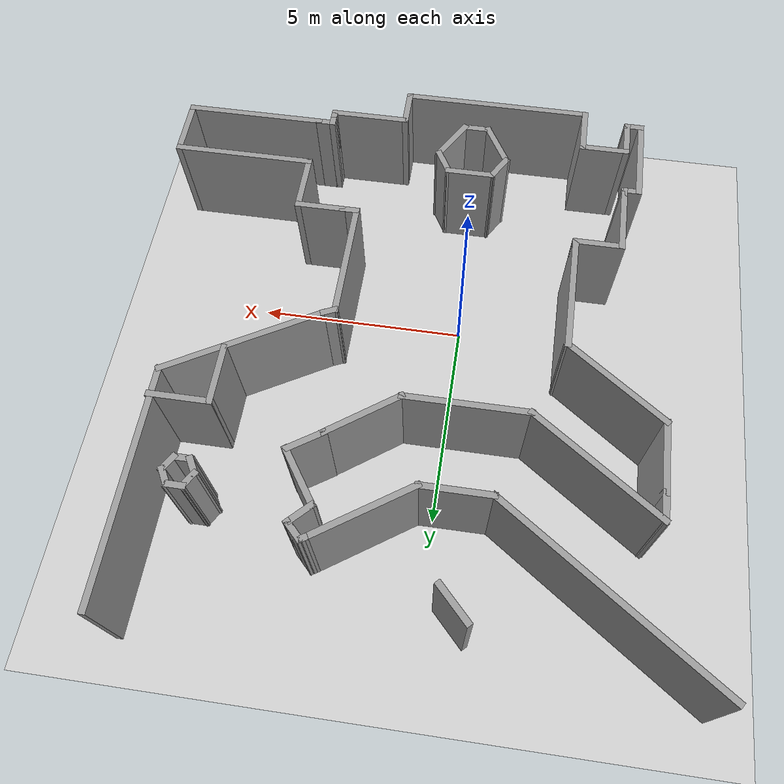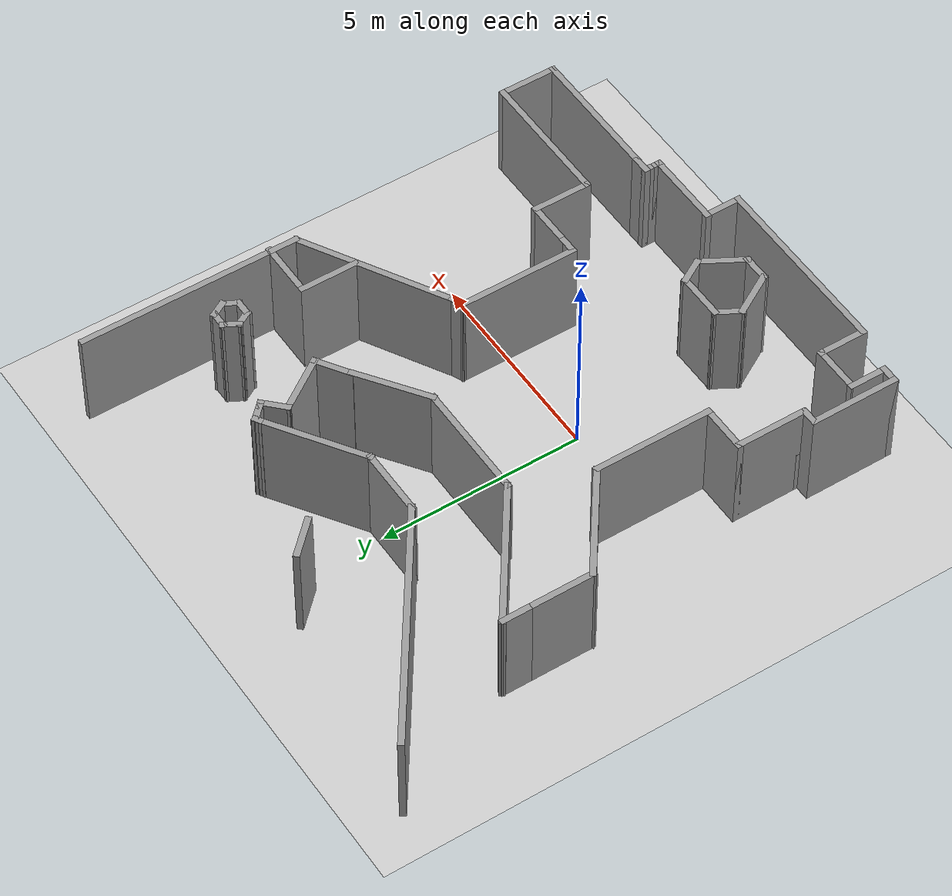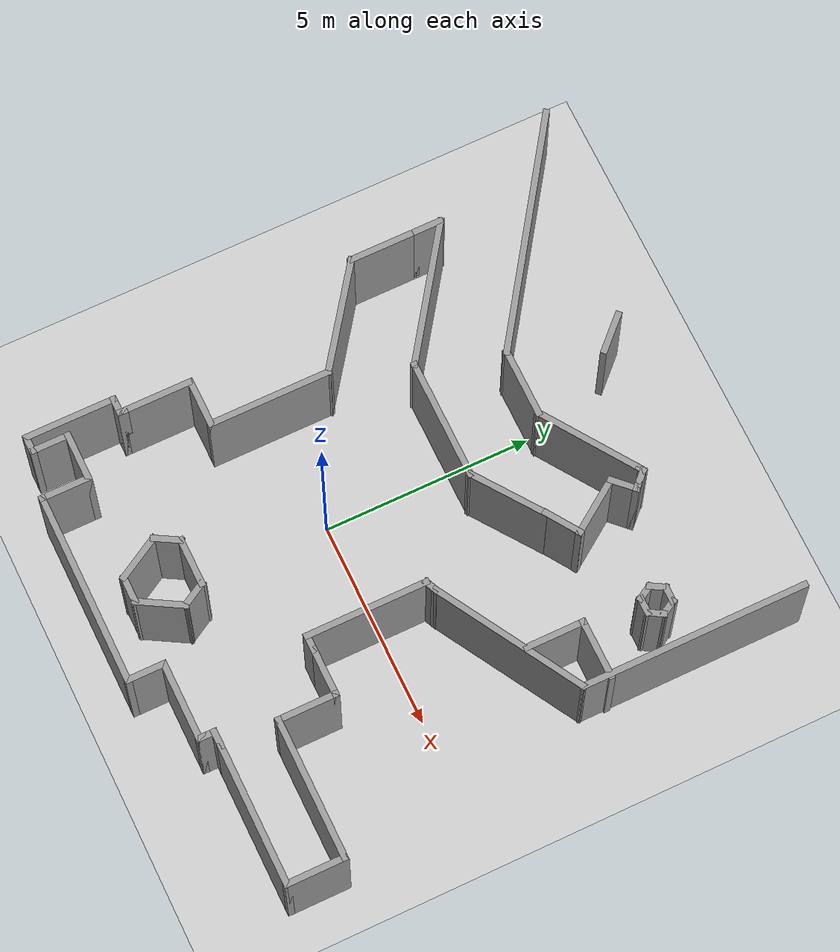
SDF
<sdf version="1.7">
 <world name="default">
  <model name="ground_plane">
   <static>1</static>
   <link name="link">
    <collision name="collision">
     <geometry><plane><normal>0 0 1</normal><size>100 100</size></plane></geometry>
     <surface>
      <contact><collide_bitmask>65535</collide_bitmask></contact>
      <friction><ode><mu>100</mu><mu2>50</mu2></ode></friction>
     </surface>
    </collision>
    <visual name="visual">
     <cast_shadows>0</cast_shadows>
     <geometry><plane><normal>0 0 1</normal><size>100 100</size></plane></geometry>
     <material>
      <script><uri>file://media/materials/scripts/gazebo.material</uri><name>Gazebo/Grey</name></script>
     </material>
    </visual>
   </link>
  </model>
  <model name="all_changdi">
   <pose>0.143338 8.39111 0 0 0 -1.57051</pose>
   <link name="Wall_100">
    <collision name="Wall_100_Collision">
     <geometry><box><size>1.75 0.15 2.5</size></box></geometry>
     <pose>0 0 1.25 0 -0 0</pose>
    </collision>
    <visual name="Wall_100_Visual">
     <pose>0 0 1.25 0 -0 0</pose>
     <geometry><box><size>1.75 0.15 2.5</size></box></geometry>
     <material>
      <script><uri>file://media/materials/scripts/gazebo.material</uri><name>Gazebo/Grey</name></script>
      <ambient>1 1 1 1</ambient>
     </material>
     <meta><layer>0</layer></meta>
    </visual>
    <pose>4.70961 -4.90602 0 0 -0 0</pose>
   </link>
   <link name="Wall_101">
    <collision name="Wall_101_Collision">
     <geometry><box><size>2.89585 0.15 2.5</size></box></geometry>
     <pose>0 0 1.25 0 -0 0</pose>
    </collision>
    <visual name="Wall_101_Visual">
     <pose>0 0 1.25 0 -0 0</pose>
     <geometry><box><size>2.89585 0.15 2.5</size></box></geometry>
     <material>
      <script><uri>file://media/materials/scripts/gazebo.material</uri><name>Gazebo/Grey</name></script>
      <ambient>1 1 1 1</ambient>
     </material>
     <meta><layer>0</layer></meta>
    </visual>
    <pose>6.3143 -3.79364 0 0 -0 0.94454</pose>
   </link>
   <link name="Wall_104">
    <collision name="Wall_104_Collision">
     <geometry><box><size>3 0.15 2.5</size></box></geometry>
     <pose>0 0 1.25 0 -0 0</pose>
    </collision>
    <visual name="Wall_104_Visual">
     <pose>0 0 1.25 0 -0 0</pose>
     <geometry><box><size>3 0.15 2.5</size></box></geometry>
     <material>
      <script><uri>file://media/materials/scripts/gazebo.material</uri><name>Gazebo/Grey</name></script>
      <ambient>1 1 1 1</ambient>
     </material>
     <meta><layer>0</layer></meta>
    </visual>
    <pose>8.544 -2.68126 0 0 -0 0</pose>
   </link>
   <link name="Wall_105">
    <collision name="Wall_105_Collision">
     <geometry><box><size>1.25 0.15 2.5</size></box></geometry>
     <pose>0 0 1.25 0 -0 0</pose>
    </collision>
    <visual name="Wall_105_Visual">
     <pose>0 0 1.25 0 -0 0</pose>
     <geometry><box><size>1.25 0.15 2.5</size></box></geometry>
     <material>
      <script><uri>file://media/materials/scripts/gazebo.material</uri><name>Gazebo/Grey</name></script>
      <ambient>1 1 1 1</ambient>
     </material>
     <meta><layer>0</layer></meta>
    </visual>
    <pose>9.96899 -3.23126 0 0 -0 -1.5708</pose>
   </link>
   <link name="Wall_106">
    <collision name="Wall_106_Collision">
     <geometry><box><size>1.75 0.15 2.5</size></box></geometry>
     <pose>0 0 1.25 0 -0 0</pose>
    </collision>
    <visual name="Wall_106_Visual">
     <pose>0 0 1.25 0 -0 0</pose>
     <geometry><box><size>1.75 0.15 2.5</size></box></geometry>
     <material>
      <script><uri>file://media/materials/scripts/gazebo.material</uri><name>Gazebo/Grey</name></script>
      <ambient>1 1 1 1</ambient>
     </material>
     <meta><layer>0</layer></meta>
    </visual>
    <pose>10.769 -3.78126 0 0 -0 0</pose>
   </link>
   <link name="Wall_107">
    <collision name="Wall_107_Collision">
     <geometry><box><size>0.25 0.15 2.5</size></box></geometry>
     <pose>0 0 1.25 0 -0 0</pose>
    </collision>
    <visual name="Wall_107_Visual">
     <pose>0 0 1.25 0 -0 0</pose>
     <geometry><box><size>0.25 0.15 2.5</size></box></geometry>
     <material>
      <script><uri>file://media/materials/scripts/gazebo.material</uri><name>Gazebo/Grey</name></script>
      <ambient>1 1 1 1</ambient>
     </material>
     <meta><layer>0</layer></meta>
    </visual>
    <pose>11.619 -3.78126 0 0 -0 0</pose>
   </link>
   <link name="Wall_108">
    <collision name="Wall_108_Collision">
     <geometry><box><size>0.5 0.15 2.5</size></box></geometry>
     <pose>0 0 1.25 0 -0 0</pose>
    </collision>
    <visual name="Wall_108_Visual">
     <pose>0 0 1.25 0 -0 0</pose>
     <geometry><box><size>0.5 0.15 2.5</size></box></geometry>
     <material>
      <script><uri>file://media/materials/scripts/gazebo.material</uri><name>Gazebo/Grey</name></script>
      <ambient>1 1 1 1</ambient>
     </material>
     <meta><layer>0</layer></meta>
    </visual>
    <pose>11.669 -3.95626 0 0 -0 -1.5708</pose>
   </link>
   <link name="Wall_109">
    <collision name="Wall_109_Collision">
     <geometry><box><size>2.25 0.15 2.5</size></box></geometry>
     <pose>0 0 1.25 0 -0 0</pose>
    </collision>
    <visual name="Wall_109_Visual">
     <pose>0 0 1.25 0 -0 0</pose>
     <geometry><box><size>2.25 0.15 2.5</size></box></geometry>
     <material>
      <script><uri>file://media/materials/scripts/gazebo.material</uri><name>Gazebo/Grey</name></script>
      <ambient>1 1 1 1</ambient>
     </material>
     <meta><layer>0</layer></meta>
    </visual>
    <pose>12.719 -4.13126 0 0 -0 0</pose>
   </link>
   <link name="Wall_110">
    <collision name="Wall_110_Collision">
     <geometry><box><size>0.5 0.15 2.5</size></box></geometry>
     <pose>0 0 1.25 0 -0 0</pose>
    </collision>
    <visual name="Wall_110_Visual">
     <pose>0 0 1.25 0 -0 0</pose>
     <geometry><box><size>0.5 0.15 2.5</size></box></geometry>
     <material>
      <script><uri>file://media/materials/scripts/gazebo.material</uri><name>Gazebo/Grey</name></script>
      <ambient>1 1 1 1</ambient>
     </material>
     <meta><layer>0</layer></meta>
    </visual>
    <pose>13.769 -3.95626 0 0 -0 1.5708</pose>
   </link>
   <link name="Wall_111">
    <collision name="Wall_111_Collision">
     <geometry><box><size>1 0.15 2.5</size></box></geometry>
     <pose>0 0 1.25 0 -0 0</pose>
    </collision>
    <visual name="Wall_111_Visual">
     <pose>0 0 1.25 0 -0 0</pose>
     <geometry><box><size>1 0.15 2.5</size></box></geometry>
     <material>
      <script><uri>file://media/materials/scripts/gazebo.material</uri><name>Gazebo/Grey</name></script>
      <ambient>1 1 1 1</ambient>
     </material>
     <meta><layer>0</layer></meta>
    </visual>
    <pose>13.344 -3.78126 0 0 -0 3.14159</pose>
   </link>
   <link name="Wall_112">
    <collision name="Wall_112_Collision">
     <geometry><box><size>1.25 0.15 2.5</size></box></geometry>
     <pose>0 0 1.25 0 -0 0</pose>
    </collision>
    <visual name="Wall_112_Visual">
     <pose>0 0 1.25 0 -0 0</pose>
     <geometry><box><size>1.25 0.15 2.5</size></box></geometry>
     <material>
      <script><uri>file://media/materials/scripts/gazebo.material</uri><name>Gazebo/Grey</name></script>
      <ambient>1 1 1 1</ambient>
     </material>
     <meta><layer>0</layer></meta>
    </visual>
    <pose>12.919 -3.23126 0 0 -0 1.5708</pose>
   </link>
   <link name="Wall_113">
    <collision name="Wall_113_Collision">
     <geometry><box><size>1.25 0.15 2.5</size></box></geometry>
     <pose>0 0 1.25 0 -0 0</pose>
    </collision>
    <visual name="Wall_113_Visual">
     <pose>0 0 1.25 0 -0 0</pose>
     <geometry><box><size>1.25 0.15 2.5</size></box></geometry>
     <material>
      <script><uri>file://media/materials/scripts/gazebo.material</uri><name>Gazebo/Grey</name></script>
      <ambient>1 1 1 1</ambient>
     </material>
     <meta><layer>0</layer></meta>
    </visual>
    <pose>13.469 -2.68126 0 0 -0 0</pose>
   </link>
   <link name="Wall_115">
    <collision name="Wall_115_Collision">
     <geometry><box><size>4.75 0.15 2.5</size></box></geometry>
     <pose>0 0 1.25 0 -0 0</pose>
    </collision>
    <visual name="Wall_115_Visual">
     <pose>0 0 1.25 0 -0 0</pose>
     <geometry><box><size>4.75 0.15 2.5</size></box></geometry>
     <material>
      <script><uri>file://media/materials/scripts/gazebo.material</uri><name>Gazebo/Grey</name></script>
      <ambient>1 1 1 1</ambient>
     </material>
     <meta><layer>0</layer></meta>
    </visual>
    <pose>14.019 -0.381256 0 0 -0 1.5708</pose>
   </link>
   <link name="Wall_116">
    <collision name="Wall_116_Collision">
     <geometry><box><size>1 0.15 2.5</size></box></geometry>
     <pose>0 0 1.25 0 -0 0</pose>
    </collision>
    <visual name="Wall_116_Visual">
     <pose>0 0 1.25 0 -0 0</pose>
     <geometry><box><size>1 0.15 2.5</size></box></geometry>
     <material>
      <script><uri>file://media/materials/scripts/gazebo.material</uri><name>Gazebo/Grey</name></script>
      <ambient>1 1 1 1</ambient>
     </material>
     <meta><layer>0</layer></meta>
    </visual>
    <pose>13.594 1.91874 0 0 -0 3.14159</pose>
   </link>
   <link name="Wall_118">
    <collision name="Wall_118_Collision">
     <geometry><box><size>2 0.15 2.5</size></box></geometry>
     <pose>0 0 1.25 0 -0 0</pose>
    </collision>
    <visual name="Wall_118_Visual">
     <pose>0 0 1.25 0 -0 0</pose>
     <geometry><box><size>2 0.15 2.5</size></box></geometry>
     <material>
      <script><uri>file://media/materials/scripts/gazebo.material</uri><name>Gazebo/Grey</name></script>
      <ambient>1 1 1 1</ambient>
     </material>
     <meta><layer>0</layer></meta>
    </visual>
    <pose>13.169 2.84374 0 0 -0 1.5708</pose>
   </link>
   <link name="Wall_119">
    <collision name="Wall_119_Collision">
     <geometry><box><size>0.25 0.15 2.5</size></box></geometry>
     <pose>0 0 1.25 0 -0 0</pose>
    </collision>
    <visual name="Wall_119_Visual">
     <pose>0 0 1.25 0 -0 0</pose>
     <geometry><box><size>0.25 0.15 2.5</size></box></geometry>
     <material>
      <script><uri>file://media/materials/scripts/gazebo.material</uri><name>Gazebo/Grey</name></script>
      <ambient>1 1 1 1</ambient>
     </material>
     <meta><layer>0</layer></meta>
    </visual>
    <pose>13.119 3.76874 0 0 -0 3.14159</pose>
   </link>
   <link name="Wall_121">
    <collision name="Wall_121_Collision">
     <geometry><box><size>0.5 0.15 2.5</size></box></geometry>
     <pose>0 0 1.25 0 -0 0</pose>
    </collision>
    <visual name="Wall_121_Visual">
     <pose>0 0 1.25 0 -0 0</pose>
     <geometry><box><size>0.5 0.15 2.5</size></box></geometry>
     <material>
      <script><uri>file://media/materials/scripts/gazebo.material</uri><name>Gazebo/Grey</name></script>
      <ambient>1 1 1 1</ambient>
     </material>
     <meta><layer>0</layer></meta>
    </visual>
    <pose>12.994 3.76874 0 0 -0 3.14159</pose>
   </link>
   <link name="Wall_122">
    <collision name="Wall_122_Collision">
     <geometry><box><size>0.5 0.15 2.5</size></box></geometry>
     <pose>0 0 1.25 0 -0 0</pose>
    </collision>
    <visual name="Wall_122_Visual">
     <pose>0 0 1.25 0 -0 0</pose>
     <geometry><box><size>0.5 0.15 2.5</size></box></geometry>
     <material>
      <script><uri>file://media/materials/scripts/gazebo.material</uri><name>Gazebo/Grey</name></script>
      <ambient>1 1 1 1</ambient>
     </material>
     <meta><layer>0</layer></meta>
    </visual>
    <pose>12.819 3.94374 0 0 -0 1.5708</pose>
   </link>
   <link name="Wall_123">
    <collision name="Wall_123_Collision">
     <geometry><box><size>3.5 0.15 2.5</size></box></geometry>
     <pose>0 0 1.25 0 -0 0</pose>
    </collision>
    <visual name="Wall_123_Visual">
     <pose>0 0 1.25 0 -0 0</pose>
     <geometry><box><size>3.5 0.15 2.5</size></box></geometry>
     <material>
      <script><uri>file://media/materials/scripts/gazebo.material</uri><name>Gazebo/Grey</name></script>
      <ambient>1 1 1 1</ambient>
     </material>
     <meta><layer>0</layer></meta>
    </visual>
    <pose>12.819 5.79374 0 0 -0 1.5708</pose>
   </link>
   <link name="Wall_124">
    <collision name="Wall_124_Collision">
     <geometry><box><size>1.5 0.15 2.5</size></box></geometry>
     <pose>0 0 1.25 0 -0 0</pose>
    </collision>
    <visual name="Wall_124_Visual">
     <pose>0 0 1.25 0 -0 0</pose>
     <geometry><box><size>1.5 0.15 2.5</size></box></geometry>
     <material>
      <script><uri>file://media/materials/scripts/gazebo.material</uri><name>Gazebo/Grey</name></script>
      <ambient>1 1 1 1</ambient>
     </material>
     <meta><layer>0</layer></meta>
    </visual>
    <pose>12.144 7.46874 0 0 -0 3.14159</pose>
   </link>
   <link name="Wall_125">
    <collision name="Wall_125_Collision">
     <geometry><box><size>3.5 0.15 2.5</size></box></geometry>
     <pose>0 0 1.25 0 -0 0</pose>
    </collision>
    <visual name="Wall_125_Visual">
     <pose>0 0 1.25 0 -0 0</pose>
     <geometry><box><size>3.5 0.15 2.5</size></box></geometry>
     <material>
      <script><uri>file://media/materials/scripts/gazebo.material</uri><name>Gazebo/Grey</name></script>
      <ambient>1 1 1 1</ambient>
     </material>
     <meta><layer>0</layer></meta>
    </visual>
    <pose>11.469 5.79374 0 0 -0 -1.5708</pose>
   </link>
   <link name="Wall_126">
    <collision name="Wall_126_Collision">
     <geometry><box><size>1.5 0.15 2.5</size></box></geometry>
     <pose>0 0 1.25 0 -0 0</pose>
    </collision>
    <visual name="Wall_126_Visual">
     <pose>0 0 1.25 0 -0 0</pose>
     <geometry><box><size>1.5 0.15 2.5</size></box></geometry>
     <material>
      <script><uri>file://media/materials/scripts/gazebo.material</uri><name>Gazebo/Grey</name></script>
      <ambient>1 1 1 1</ambient>
     </material>
     <meta><layer>0</layer></meta>
    </visual>
    <pose>10.794 4.11874 0 0 -0 3.14159</pose>
   </link>
   <link name="Wall_127">
    <collision name="Wall_127_Collision">
     <geometry><box><size>1.25 0.15 2.5</size></box></geometry>
     <pose>0 0 1.25 0 -0 0</pose>
    </collision>
    <visual name="Wall_127_Visual">
     <pose>0 0 1.25 0 -0 0</pose>
     <geometry><box><size>1.25 0.15 2.5</size></box></geometry>
     <material>
      <script><uri>file://media/materials/scripts/gazebo.material</uri><name>Gazebo/Grey</name></script>
      <ambient>1 1 1 1</ambient>
     </material>
     <meta><layer>0</layer></meta>
    </visual>
    <pose>10.119 3.56874 0 0 -0 -1.5708</pose>
   </link>
   <link name="Wall_128">
    <collision name="Wall_128_Collision">
     <geometry><box><size>0.5 0.15 2.5</size></box></geometry>
     <pose>0 0 1.25 0 -0 0</pose>
    </collision>
    <visual name="Wall_128_Visual">
     <pose>0 0 1.25 0 -0 0</pose>
     <geometry><box><size>0.5 0.15 2.5</size></box></geometry>
     <material>
      <script><uri>file://media/materials/scripts/gazebo.material</uri><name>Gazebo/Grey</name></script>
      <ambient>1 1 1 1</ambient>
     </material>
     <meta><layer>0</layer></meta>
    </visual>
    <pose>10.119 2.84374 0 0 -0 -1.5708</pose>
   </link>
   <link name="Wall_129">
    <collision name="Wall_129_Collision">
     <geometry><box><size>3 0.15 2.5</size></box></geometry>
     <pose>0 0 1.25 0 -0 0</pose>
    </collision>
    <visual name="Wall_129_Visual">
     <pose>0 0 1.25 0 -0 0</pose>
     <geometry><box><size>3 0.15 2.5</size></box></geometry>
     <material>
      <script><uri>file://media/materials/scripts/gazebo.material</uri><name>Gazebo/Grey</name></script>
      <ambient>1 1 1 1</ambient>
     </material>
     <meta><layer>0</layer></meta>
    </visual>
    <pose>8.69399 2.66874 0 0 -0 3.14159</pose>
   </link>
   <link name="Wall_130">
    <collision name="Wall_130_Collision">
     <geometry><box><size>0.420828 0.15 2.5</size></box></geometry>
     <pose>0 0 1.25 0 -0 0</pose>
    </collision>
    <visual name="Wall_130_Visual">
     <pose>0 0 1.25 0 -0 0</pose>
     <geometry><box><size>0.420828 0.15 2.5</size></box></geometry>
     <material>
      <script><uri>file://media/materials/scripts/gazebo.material</uri><name>Gazebo/Grey</name></script>
      <ambient>1 1 1 1</ambient>
     </material>
     <meta><layer>0</layer></meta>
    </visual>
    <pose>7.21367 2.79234 0 0 -0 1.99164</pose>
   </link>
   <link name="Wall_139">
    <collision name="Wall_139_Collision">
     <geometry><box><size>0.5 0.15 2.5</size></box></geometry>
     <pose>0 0 1.25 0 -0 0</pose>
    </collision>
    <visual name="Wall_139_Visual">
     <pose>0 0 1.25 0 -0 0</pose>
     <geometry><box><size>0.5 0.15 2.5</size></box></geometry>
     <material>
      <script><uri>file://media/materials/scripts/gazebo.material</uri><name>Gazebo/Grey</name></script>
      <ambient>1 1 1 1</ambient>
     </material>
     <meta><layer>0</layer></meta>
    </visual>
    <pose>2.63396 5.18389 0 0 -0 -1.5708</pose>
   </link>
   <link name="Wall_140">
    <collision name="Wall_140_Collision">
     <geometry><box><size>0.5 0.15 2.5</size></box></geometry>
     <pose>0 0 1.25 0 -0 0</pose>
    </collision>
    <visual name="Wall_140_Visual">
     <pose>0 0 1.25 0 -0 0</pose>
     <geometry><box><size>0.5 0.15 2.5</size></box></geometry>
     <material>
      <script><uri>file://media/materials/scripts/gazebo.material</uri><name>Gazebo/Grey</name></script>
      <ambient>1 1 1 1</ambient>
     </material>
     <meta><layer>0</layer></meta>
    </visual>
    <pose>2.78551 4.92139 0 0 -0 -0.523599</pose>
   </link>
   <link name="Wall_141">
    <collision name="Wall_141_Collision">
     <geometry><box><size>0.5 0.15 2.5</size></box></geometry>
     <pose>0 0 1.25 0 -0 0</pose>
    </collision>
    <visual name="Wall_141_Visual">
     <pose>0 0 1.25 0 -0 0</pose>
     <geometry><box><size>0.5 0.15 2.5</size></box></geometry>
     <material>
      <script><uri>file://media/materials/scripts/gazebo.material</uri><name>Gazebo/Grey</name></script>
      <ambient>1 1 1 1</ambient>
     </material>
     <meta><layer>0</layer></meta>
    </visual>
    <pose>3.08862 4.92139 0 0 -0 0.523599</pose>
   </link>
   <link name="Wall_142">
    <collision name="Wall_142_Collision">
     <geometry><box><size>0.5 0.15 2.5</size></box></geometry>
     <pose>0 0 1.25 0 -0 0</pose>
    </collision>
    <visual name="Wall_142_Visual">
     <pose>0 0 1.25 0 -0 0</pose>
     <geometry><box><size>0.5 0.15 2.5</size></box></geometry>
     <material>
      <script><uri>file://media/materials/scripts/gazebo.material</uri><name>Gazebo/Grey</name></script>
      <ambient>1 1 1 1</ambient>
     </material>
     <meta><layer>0</layer></meta>
    </visual>
    <pose>3.24017 5.18389 0 0 -0 1.5708</pose>
   </link>
   <link name="Wall_143">
    <collision name="Wall_143_Collision">
     <geometry><box><size>0.5 0.15 2.5</size></box></geometry>
     <pose>0 0 1.25 0 -0 0</pose>
    </collision>
    <visual name="Wall_143_Visual">
     <pose>0 0 1.25 0 -0 0</pose>
     <geometry><box><size>0.5 0.15 2.5</size></box></geometry>
     <material>
      <script><uri>file://media/materials/scripts/gazebo.material</uri><name>Gazebo/Grey</name></script>
      <ambient>1 1 1 1</ambient>
     </material>
     <meta><layer>0</layer></meta>
    </visual>
    <pose>3.08862 5.44639 0 0 -0 2.61799</pose>
   </link>
   <link name="Wall_144">
    <collision name="Wall_144_Collision">
     <geometry><box><size>0.5 0.15 2.5</size></box></geometry>
     <pose>0 0 1.25 0 -0 0</pose>
    </collision>
    <visual name="Wall_144_Visual">
     <pose>0 0 1.25 0 -0 0</pose>
     <geometry><box><size>0.5 0.15 2.5</size></box></geometry>
     <material>
      <script><uri>file://media/materials/scripts/gazebo.material</uri><name>Gazebo/Grey</name></script>
      <ambient>1 1 1 1</ambient>
     </material>
     <meta><layer>0</layer></meta>
    </visual>
    <pose>2.78551 5.44639 0 0 -0 -2.61799</pose>
   </link>
   <link name="Wall_146">
    <collision name="Wall_146_Collision">
     <geometry><box><size>0.75 0.15 2.5</size></box></geometry>
     <pose>0 0 1.25 0 -0 0</pose>
    </collision>
    <visual name="Wall_146_Visual">
     <pose>0 0 1.25 0 -0 0</pose>
     <geometry><box><size>0.75 0.15 2.5</size></box></geometry>
     <material>
      <script><uri>file://media/materials/scripts/gazebo.material</uri><name>Gazebo/Grey</name></script>
      <ambient>1 1 1 1</ambient>
     </material>
     <meta><layer>0</layer></meta>
    </visual>
    <pose>11.9405 0.758184 0 0 -0 -2.61799</pose>
   </link>
   <link name="Wall_147">
    <collision name="Wall_147_Collision">
     <geometry><box><size>1.25 0.15 2.5</size></box></geometry>
     <pose>0 0 1.25 0 -0 0</pose>
    </collision>
    <visual name="Wall_147_Visual">
     <pose>0 0 1.25 0 -0 0</pose>
     <geometry><box><size>1.25 0.15 2.5</size></box></geometry>
     <material>
      <script><uri>file://media/materials/scripts/gazebo.material</uri><name>Gazebo/Grey</name></script>
      <ambient>1 1 1 1</ambient>
     </material>
     <meta><layer>0</layer></meta>
    </visual>
    <pose>11.6807 0.058184 0 0 -0 -1.5708</pose>
   </link>
   <link name="Wall_148">
    <collision name="Wall_148_Collision">
     <geometry><box><size>0.75 0.15 2.5</size></box></geometry>
     <pose>0 0 1.25 0 -0 0</pose>
    </collision>
    <visual name="Wall_148_Visual">
     <pose>0 0 1.25 0 -0 0</pose>
     <geometry><box><size>0.75 0.15 2.5</size></box></geometry>
     <material>
      <script><uri>file://media/materials/scripts/gazebo.material</uri><name>Gazebo/Grey</name></script>
      <ambient>1 1 1 1</ambient>
     </material>
     <meta><layer>0</layer></meta>
    </visual>
    <pose>11.9405 -0.641816 0 0 -0 -0.523599</pose>
   </link>
   <link name="Wall_149">
    <collision name="Wall_149_Collision">
     <geometry><box><size>1.25 0.15 2.5</size></box></geometry>
     <pose>0 0 1.25 0 -0 0</pose>
    </collision>
    <visual name="Wall_149_Visual">
     <pose>0 0 1.25 0 -0 0</pose>
     <geometry><box><size>1.25 0.15 2.5</size></box></geometry>
     <material>
      <script><uri>file://media/materials/scripts/gazebo.material</uri><name>Gazebo/Grey</name></script>
      <ambient>1 1 1 1</ambient>
     </material>
     <meta><layer>0</layer></meta>
    </visual>
    <pose>12.6767 -0.516816 0 0 -0 0.523599</pose>
   </link>
   <link name="Wall_150">
    <collision name="Wall_150_Collision">
     <geometry><box><size>0.75 0.15 2.5</size></box></geometry>
     <pose>0 0 1.25 0 -0 0</pose>
    </collision>
    <visual name="Wall_150_Visual">
     <pose>0 0 1.25 0 -0 0</pose>
     <geometry><box><size>0.75 0.15 2.5</size></box></geometry>
     <material>
      <script><uri>file://media/materials/scripts/gazebo.material</uri><name>Gazebo/Grey</name></script>
      <ambient>1 1 1 1</ambient>
     </material>
     <meta><layer>0</layer></meta>
    </visual>
    <pose>13.153 0.058184 0 0 -0 1.5708</pose>
   </link>
   <link name="Wall_151">
    <collision name="Wall_151_Collision">
     <geometry><box><size>1.25 0.15 2.5</size></box></geometry>
     <pose>0 0 1.25 0 -0 0</pose>
    </collision>
    <visual name="Wall_151_Visual">
     <pose>0 0 1.25 0 -0 0</pose>
     <geometry><box><size>1.25 0.15 2.5</size></box></geometry>
     <material>
      <script><uri>file://media/materials/scripts/gazebo.material</uri><name>Gazebo/Grey</name></script>
      <ambient>1 1 1 1</ambient>
     </material>
     <meta><layer>0</layer></meta>
    </visual>
    <pose>12.6767 0.633184 0 0 -0 2.61799</pose>
   </link>
   <link name="Wall_160">
    <collision name="Wall_160_Collision">
     <geometry><box><size>1.5 0.15 2.5</size></box></geometry>
     <pose>0 0 1.25 0 -0 0</pose>
    </collision>
    <visual name="Wall_160_Visual">
     <pose>0 0 1.25 0 -0 0</pose>
     <geometry><box><size>1.5 0.15 2.5</size></box></geometry>
     <material>
      <script><uri>file://media/materials/scripts/gazebo.material</uri><name>Gazebo/Grey</name></script>
      <ambient>1 1 1 1</ambient>
     </material>
     <meta><layer>0</layer></meta>
    </visual>
    <pose>4.59854 5.62037 0 0 -0 -1.5708</pose>
   </link>
   <link name="Wall_161">
    <collision name="Wall_161_Collision">
     <geometry><box><size>1.5 0.15 2.5</size></box></geometry>
     <pose>0 0 1.25 0 -0 0</pose>
    </collision>
    <visual name="Wall_161_Visual">
     <pose>0 0 1.25 0 -0 0</pose>
     <geometry><box><size>1.5 0.15 2.5</size></box></geometry>
     <material>
      <script><uri>file://media/materials/scripts/gazebo.material</uri><name>Gazebo/Grey</name></script>
      <ambient>1 1 1 1</ambient>
     </material>
     <meta><layer>0</layer></meta>
    </visual>
    <pose>5.27354 4.94537 0 0 -0 0</pose>
   </link>
   <link name="Wall_55">
    <collision name="Wall_55_Collision">
     <geometry><box><size>5.5 0.15 2.5</size></box></geometry>
     <pose>0 0 1.25 0 -0 0</pose>
    </collision>
    <visual name="Wall_55_Visual">
     <pose>0 0 1.25 0 -0 0</pose>
     <geometry><box><size>5.5 0.15 2.5</size></box></geometry>
     <material>
      <script><uri>file://media/materials/scripts/gazebo.material</uri><name>Gazebo/Grey</name></script>
      <ambient>1 1 1 1</ambient>
     </material>
     <meta><layer>0</layer></meta>
    </visual>
    <pose>2.55835 6.25014 0 0 -0 0</pose>
   </link>
   <link name="Wall_56">
    <collision name="Wall_56_Collision">
     <geometry><box><size>4 0.15 2.5</size></box></geometry>
     <pose>0 0 1.25 0 -0 0</pose>
    </collision>
    <visual name="Wall_56_Visual">
     <pose>0 0 1.25 0 -0 0</pose>
     <geometry><box><size>4 0.15 2.5</size></box></geometry>
     <material>
      <script><uri>file://media/materials/scripts/gazebo.material</uri><name>Gazebo/Grey</name></script>
      <ambient>1 1 1 1</ambient>
     </material>
     <meta><layer>0</layer></meta>
    </visual>
    <pose>6.19585 4.58304 0 0 -0 -1.0472</pose>
   </link>
   <link name="Wall_61">
    <collision name="Wall_61_Collision">
     <geometry><box><size>1.07265 0.15 2.5</size></box></geometry>
     <pose>0 0 1.25 0 -0 0</pose>
    </collision>
    <visual name="Wall_61_Visual">
     <pose>0 0 1.25 0 -0 0</pose>
     <geometry><box><size>1.07265 0.15 2.5</size></box></geometry>
     <material>
      <script><uri>file://media/materials/scripts/gazebo.material</uri><name>Gazebo/Grey</name></script>
      <ambient>1 1 1 1</ambient>
     </material>
     <meta><layer>0</layer></meta>
    </visual>
    <pose>1.04067 -0.836918 0 0 -0 0.77334</pose>
   </link>
   <link name="Wall_74">
    <collision name="Wall_74_Collision">
     <geometry><box><size>6.08727 0.15 2.5</size></box></geometry>
     <pose>0 0 1.25 0 -0 0</pose>
    </collision>
    <visual name="Wall_74_Visual">
     <pose>0 0 1.25 0 -0 0</pose>
     <geometry><box><size>6.08727 0.15 2.5</size></box></geometry>
     <material>
      <script><uri>file://media/materials/scripts/gazebo.material</uri><name>Gazebo/Grey</name></script>
      <ambient>1 1 1 1</ambient>
     </material>
     <meta><layer>0</layer></meta>
    </visual>
    <pose>1.65671 -3.85748 0 0 -0 0.96726</pose>
   </link>
   <link name="Wall_76">
    <collision name="Wall_76_Collision">
     <geometry><box><size>1.75 0.15 2.5</size></box></geometry>
     <pose>0 0 1.25 0 -0 0</pose>
    </collision>
    <visual name="Wall_76_Visual">
     <pose>0 0 1.25 0 -0 0</pose>
     <geometry><box><size>1.75 0.15 2.5</size></box></geometry>
     <material>
      <script><uri>file://media/materials/scripts/gazebo.material</uri><name>Gazebo/Grey</name></script>
      <ambient>1 1 1 1</ambient>
     </material>
     <meta><layer>0</layer></meta>
    </visual>
    <pose>3.34158 -0.613307 0 0 -0 1.5708</pose>
   </link>
   <link name="Wall_77">
    <collision name="Wall_77_Collision">
     <geometry><box><size>2.69925 0.15 2.5</size></box></geometry>
     <pose>0 0 1.25 0 -0 0</pose>
    </collision>
    <visual name="Wall_77_Visual">
     <pose>0 0 1.25 0 -0 0</pose>
     <geometry><box><size>2.69925 0.15 2.5</size></box></geometry>
     <material>
      <script><uri>file://media/materials/scripts/gazebo.material</uri><name>Gazebo/Grey</name></script>
      <ambient>1 1 1 1</ambient>
     </material>
     <meta><layer>0</layer></meta>
    </visual>
    <pose>2.62725 1.24234 0 0 -0 2.1657</pose>
   </link>
   <link name="Wall_81">
    <collision name="Wall_81_Collision">
     <geometry><box><size>0.25 0.15 2.5</size></box></geometry>
     <pose>0 0 1.25 0 -0 0</pose>
    </collision>
    <visual name="Wall_81_Visual">
     <pose>0 0 1.25 0 -0 0</pose>
     <geometry><box><size>0.25 0.15 2.5</size></box></geometry>
     <material>
      <script><uri>file://media/materials/scripts/gazebo.material</uri><name>Gazebo/Grey</name></script>
      <ambient>1 1 1 1</ambient>
     </material>
     <meta><layer>0</layer></meta>
    </visual>
    <pose>1.88792 2.3413 0 0 -0 2.0944</pose>
   </link>
   <link name="Wall_83">
    <collision name="Wall_83_Collision">
     <geometry><box><size>0.25 0.15 2.5</size></box></geometry>
     <pose>0 0 1.25 0 -0 0</pose>
    </collision>
    <visual name="Wall_83_Visual">
     <pose>0 0 1.25 0 -0 0</pose>
     <geometry><box><size>0.25 0.15 2.5</size></box></geometry>
     <material>
      <script><uri>file://media/materials/scripts/gazebo.material</uri><name>Gazebo/Grey</name></script>
      <ambient>1 1 1 1</ambient>
     </material>
     <meta><layer>0</layer></meta>
    </visual>
    <pose>1.88792 2.3413 0 0 -0 2.0944</pose>
   </link>
   <link name="Wall_84">
    <collision name="Wall_84_Collision">
     <geometry><box><size>0.5 0.15 2.5</size></box></geometry>
     <pose>0 0 1.25 0 -0 0</pose>
    </collision>
    <visual name="Wall_84_Visual">
     <pose>0 0 1.25 0 -0 0</pose>
     <geometry><box><size>0.5 0.15 2.5</size></box></geometry>
     <material>
      <script><uri>file://media/materials/scripts/gazebo.material</uri><name>Gazebo/Grey</name></script>
      <ambient>1 1 1 1</ambient>
     </material>
     <meta><layer>0</layer></meta>
    </visual>
    <pose>1.98666 2.50834 0 0 -0 0.785398</pose>
   </link>
   <link name="Wall_85">
    <collision name="Wall_85_Collision">
     <geometry><box><size>0.25 0.15 2.5</size></box></geometry>
     <pose>0 0 1.25 0 -0 0</pose>
    </collision>
    <visual name="Wall_85_Visual">
     <pose>0 0 1.25 0 -0 0</pose>
     <geometry><box><size>0.25 0.15 2.5</size></box></geometry>
     <material>
      <script><uri>file://media/materials/scripts/gazebo.material</uri><name>Gazebo/Grey</name></script>
      <ambient>1 1 1 1</ambient>
     </material>
     <meta><layer>0</layer></meta>
    </visual>
    <pose>2.14576 2.66744 0 0 -0 0.785398</pose>
   </link>
   <link name="Wall_86">
    <collision name="Wall_86_Collision">
     <geometry><box><size>0.75 0.15 2.5</size></box></geometry>
     <pose>0 0 1.25 0 -0 0</pose>
    </collision>
    <visual name="Wall_86_Visual">
     <pose>0 0 1.25 0 -0 0</pose>
     <geometry><box><size>0.75 0.15 2.5</size></box></geometry>
     <material>
      <script><uri>file://media/materials/scripts/gazebo.material</uri><name>Gazebo/Grey</name></script>
      <ambient>1 1 1 1</ambient>
     </material>
     <meta><layer>0</layer></meta>
    </visual>
    <pose>2.39325 2.49066 0 0 -0 -0.785398</pose>
   </link>
   <link name="Wall_87">
    <collision name="Wall_87_Collision">
     <geometry><box><size>1.54822 0.15 2.5</size></box></geometry>
     <pose>0 0 1.25 0 -0 0</pose>
    </collision>
    <visual name="Wall_87_Visual">
     <pose>0 0 1.25 0 -0 0</pose>
     <geometry><box><size>1.54822 0.15 2.5</size></box></geometry>
     <material>
      <script><uri>file://media/materials/scripts/gazebo.material</uri><name>Gazebo/Grey</name></script>
      <ambient>1 1 1 1</ambient>
     </material>
     <meta><layer>0</layer></meta>
    </visual>
    <pose>3.17978 2.67706 0 0 -0 0.606567</pose>
   </link>
   <link name="Wall_89">
    <collision name="Wall_89_Collision">
     <geometry><box><size>1.01735 0.15 2.5</size></box></geometry>
     <pose>0 0 1.25 0 -0 0</pose>
    </collision>
    <visual name="Wall_89_Visual">
     <pose>0 0 1.25 0 -0 0</pose>
     <geometry><box><size>1.01735 0.15 2.5</size></box></geometry>
     <material>
      <script><uri>file://media/materials/scripts/gazebo.material</uri><name>Gazebo/Grey</name></script>
      <ambient>1 1 1 1</ambient>
     </material>
     <meta><layer>0</layer></meta>
    </visual>
    <pose>3.98349 2.71404 0 0 -0 -0.985748</pose>
   </link>
   <link name="Wall_91">
    <collision name="Wall_91_Collision">
     <geometry><box><size>2.01974 0.15 2.5</size></box></geometry>
     <pose>0 0 1.25 0 -0 0</pose>
    </collision>
    <visual name="Wall_91_Visual">
     <pose>0 0 1.25 0 -0 0</pose>
     <geometry><box><size>2.01974 0.15 2.5</size></box></geometry>
     <material>
      <script><uri>file://media/materials/scripts/gazebo.material</uri><name>Gazebo/Grey</name></script>
      <ambient>1 1 1 1</ambient>
     </material>
     <meta><layer>0</layer></meta>
    </visual>
    <pose>4.77703 1.5921 0 0 -0 -0.949906</pose>
   </link>
   <link name="Wall_95">
    <collision name="Wall_95_Collision">
     <geometry><box><size>3 0.15 2.5</size></box></geometry>
     <pose>0 0 1.25 0 -0 0</pose>
    </collision>
    <visual name="Wall_95_Visual">
     <pose>0 0 1.25 0 -0 0</pose>
     <geometry><box><size>3 0.15 2.5</size></box></geometry>
     <material>
      <script><uri>file://media/materials/scripts/gazebo.material</uri><name>Gazebo/Grey</name></script>
      <ambient>1 1 1 1</ambient>
     </material>
     <meta><layer>0</layer></meta>
    </visual>
    <pose>5.3209 -0.593286 0 0 -0 -1.5708</pose>
   </link>
   <link name="Wall_97">
    <collision name="Wall_97_Collision">
     <geometry><box><size>3.67684 0.15 2.5</size></box></geometry>
     <pose>0 0 1.25 0 -0 0</pose>
    </collision>
    <visual name="Wall_97_Visual">
     <pose>0 0 1.25 0 -0 0</pose>
     <geometry><box><size>3.67684 0.15 2.5</size></box></geometry>
     <material>
      <script><uri>file://media/materials/scripts/gazebo.material</uri><name>Gazebo/Grey</name></script>
      <ambient>1 1 1 1</ambient>
     </material>
     <meta><layer>0</layer></meta>
    </visual>
    <pose>4.30853 -3.46215 0 0 -0 -2.18229</pose>
   </link>
   <link name="Wall_98">
    <collision name="Wall_98_Collision">
     <geometry><box><size>0.75 0.15 2.5</size></box></geometry>
     <pose>0 0 1.25 0 -0 0</pose>
    </collision>
    <visual name="Wall_98_Visual">
     <pose>0 0 1.25 0 -0 0</pose>
     <geometry><box><size>0.75 0.15 2.5</size></box></geometry>
     <material>
      <script><uri>file://media/materials/scripts/gazebo.material</uri><name>Gazebo/Grey</name></script>
      <ambient>1 1 1 1</ambient>
     </material>
     <meta><layer>0</layer></meta>
    </visual>
    <pose>3.60961 -4.90602 0 0 -0 0</pose>
   </link>
   <static>1</static>
  </model>
 </world>
</sdf>
